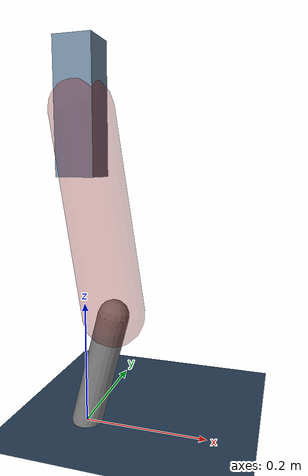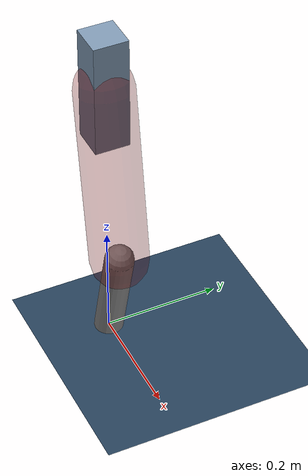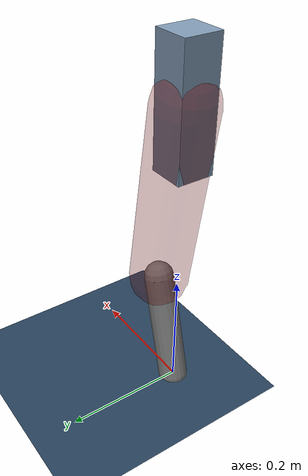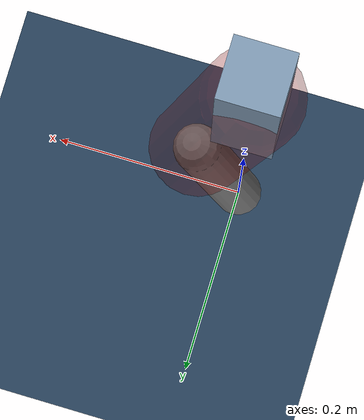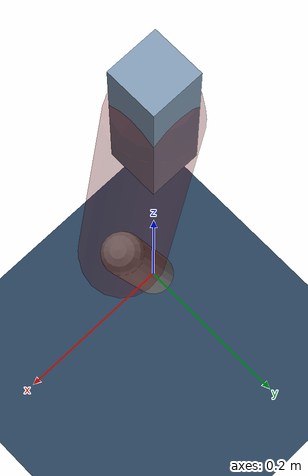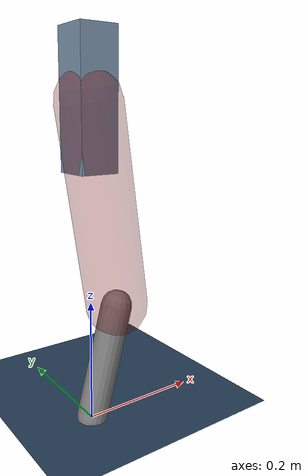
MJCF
<mujoco model="Hopper2D">
	<compiler inertiafromgeom="true" angle="radian" />
	<option timestep="0.001" integrator="implicit" cone="elliptic" solver="Newton" tolerance="1e-10" />

	<default>
		<geom contype="1" conaffinity="1" condim="3" friction="2 0.005 0.0001" solref="0.005 1" />
		<joint limited="true" damping="0.1" />
	</default>

	<asset>
		<texture name="skybox" type="skybox" builtin="gradient" rgb1=".4 .6 .8" rgb2="0 0 0" width="800" height="800" />
		<texture name="grid" type="2d" builtin="checker" rgb1=".1 .2 .3" rgb2=".2 .3 .4" width="300" height="300" mark="edge" markrgb=".2 .3 .4" />
		<material name="ground" texture="grid" texrepeat="1 1" texuniform="true" reflectance="0.1" />
		<material name="leg" rgba="0.5 0.6 0.7 1" />
	</asset>

	<worldbody>

		<geom name="floor" type="plane" size="5 5 0.25" material="ground" />

		<light directional="false" diffuse="0.8 0.8 0.8" specular="0.3 0.3 0.3" pos="0 0 2" dir="0 0 -1" />
		<light mode="targetbodycom" target="base" directional="false" diffuse="0.8 0.8 0.8" specular="0.3 0.3 0.3" pos="0 0 2" dir="0 0 -1" />

		<camera name="fixed" pos="0 -2 1" xyaxes="1 0 0 0 0 1" />
		<camera name="tracking" mode="trackcom" pos="0 -3 1" />

		<body name="root" pos="0 0 0.501813324597829">
			<joint name="slide_x" type="slide" axis="1 0 0" range="-100 100" />
			<joint name="slide_z" type="slide" axis="0 0 1" range="0 10" />

			<body name="base" pos="0 0 0">
				<geom name="torso" type="box" size="0.03 0.03 0.1" mass="3.32" material="leg" />

				<body name="link1" pos="0 0 0" euler="0 1.4173259323344183 0">
					<joint type="hinge" axis="0 -1 0" pos="0 0 0" name="hinge1" limited="true" range="-3.14 3.14" stiffness="0" damping="0.1" />
					<geom name="thigh" type="capsule" fromto="0 0 0 0.31878951269269223 0 0" size="0.05" rgba="0.5 0 0 0.3" mass="1.039931684270269" />

					<body name="link2" pos="0.31878951269269223 0 0" euler="0 0.4087035747255469 0">
						<joint type="hinge" axis="0 -1 0" pos="0 0 0" name="hinge2" limited="true" range="-3.14 3.14" stiffness="0" damping="0.1" />
						<geom name="shank" type="capsule" fromto="0 0 0 0.19302381190513676 0 0" size="0.025" mass="0.39501904952410943" />

					</body>
				</body>
			</body>
		</body>
	</worldbody>

	<actuator>
		<motor name="torque1" joint="hinge1" ctrlrange="-143.284179097215 143.284179097215" ctrllimited="true" gear="1" />
		<motor name="torque2" joint="hinge2" ctrlrange="-85.28708965205058 85.28708965205058" ctrllimited="true" gear="1" />
	</actuator>
</mujoco>
